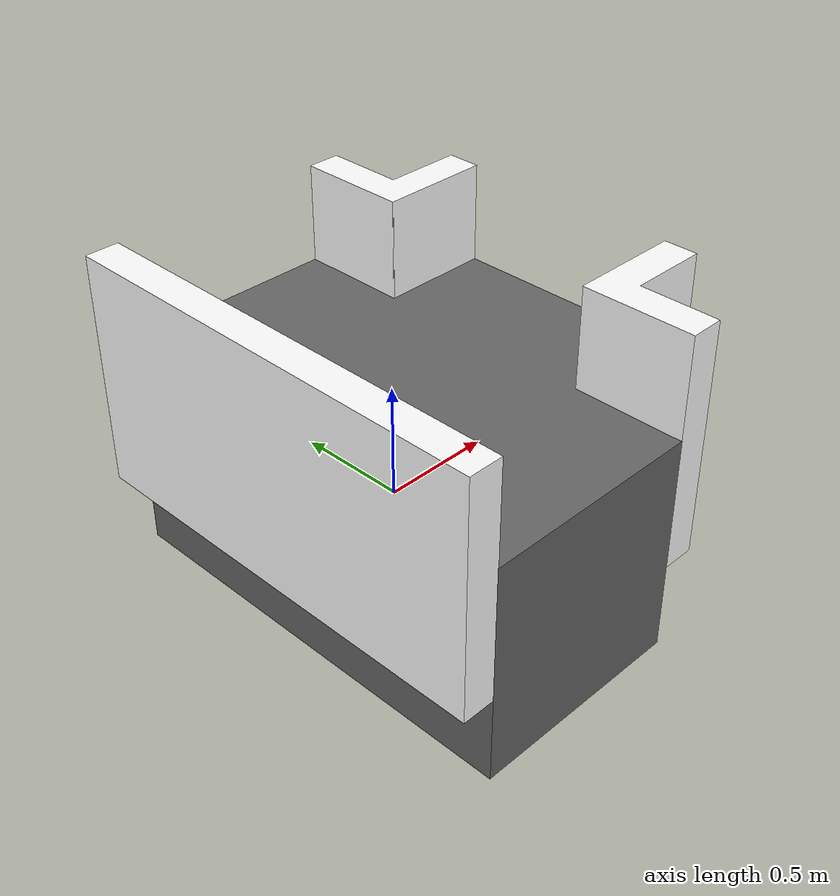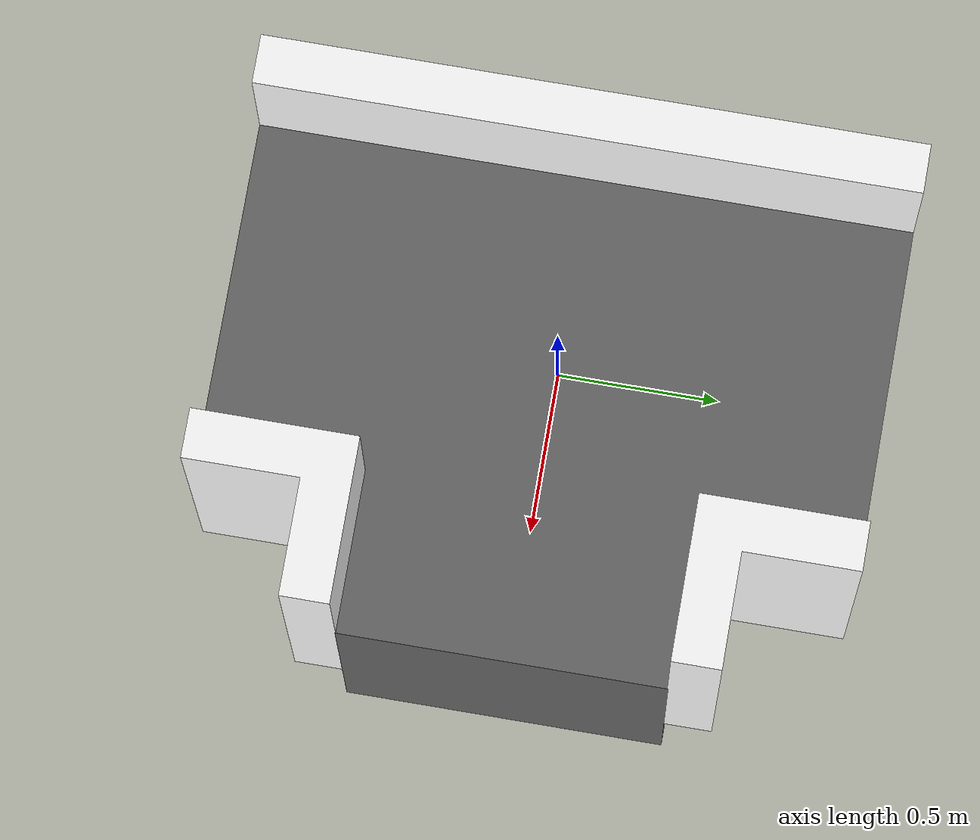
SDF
<?xml version="1.0" ?>
<sdf version="1.4">
  <model name="mc_street_t_junction">
    <static>true</static>
    <link name="street_link">
      <pose>0 0 0 1.5708 0 0</pose>
      <collision name="street_collision">
        <geometry>
          <mesh>
            <uri>model://small_mascor_city_street_t_junction/meshes/maskor_city_street_t_junction_road.dae</uri>
            <scale>1 1 1</scale>
          </mesh>
        </geometry>
      </collision>
      <visual name="street_visual">
        <geometry>
          <mesh>
            <uri>model://small_mascor_city_street_t_junction/meshes/maskor_city_street_t_junction_road.dae</uri>
            <scale>1 1 1</scale>
          </mesh>
        </geometry>
      </visual>
    </link>

  <link name="border_link">
      <pose>0 0 0.4 1.5708 0 0</pose>
      <collision name="border_colision">
        <geometry>
           <mesh>
            <uri>model://small_mascor_city_street_t_junction/meshes/maskor_city_street_t_junction_border.dae</uri>
            <scale>1 1 1</scale>
          </mesh>
        </geometry>
      </collision>
      <visual name="border_visual">
        <geometry>
          <mesh>
            <uri>model://small_mascor_city_street_t_junction/meshes/maskor_city_street_t_junction_border.dae</uri>
            <scale>1 1 1</scale>
          </mesh>
        </geometry>
      <material>
          <ambient>1 1 1 1</ambient>
		  <diffuse>1 1 1 1</diffuse>
      </material>
      </visual>
    </link>

  </model>
</sdf>
